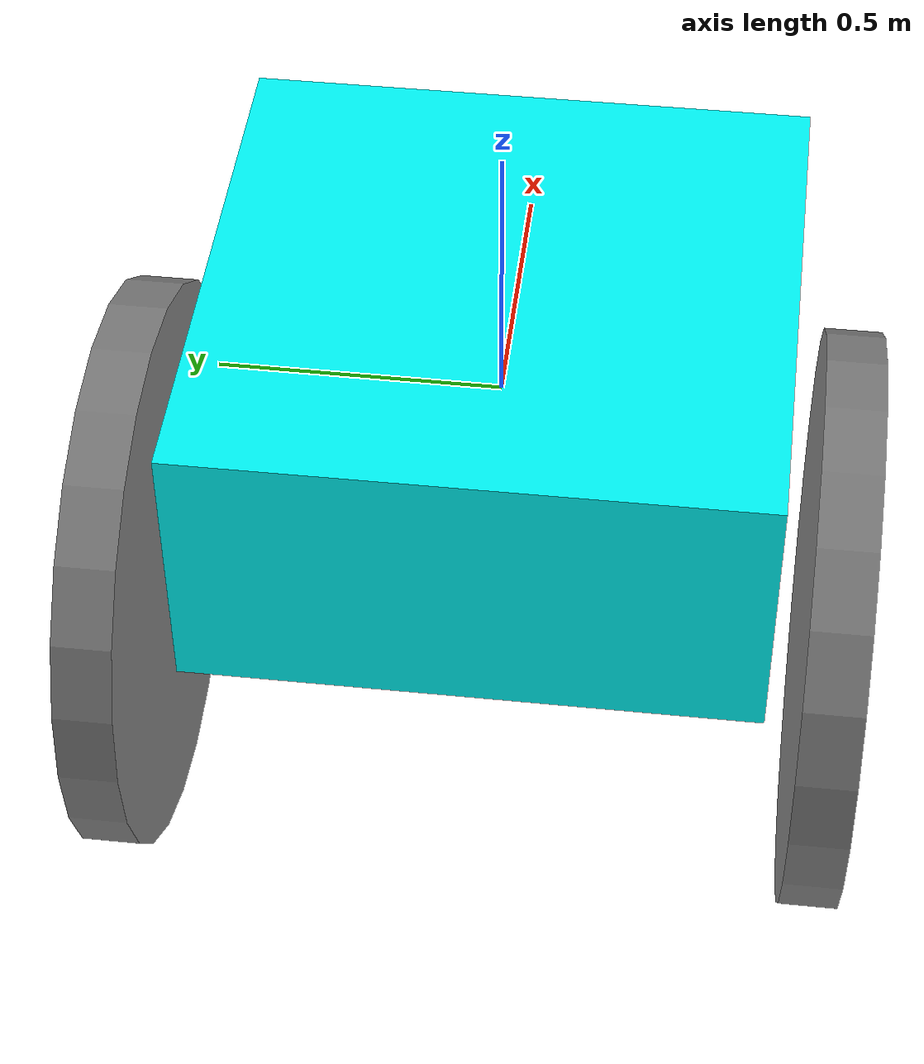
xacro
<?xml version="1.0"?>
<robot name="travis_bot" xmlns:xacro="http://ros.org/wiki/xacro">

    <xacro:property name="base_width" value="1"/>
    <xacro:property name="base_length" value="1"/>
    <xacro:property name="base_height" value="0.5"/>

    <xacro:property name="wheel_radius" value="0.5"/>
    <xacro:property name="wheel_width" value="0.1"/>

    <xacro:property name="wheel_xoff" value="0.25"/>
    <xacro:property name="wheel_ygap" value="0.1"/>
    <xacro:property name="wheel_zoff" value="0.25"/>

    <link name="base_link">
        <visual>
        <geometry>
            <box size="${base_length} ${base_width} ${base_height}"/>
        </geometry>
        <material name="Cyan">
            <color rgba="0 1.0 1.0 1.0"/>
        </material>
        </visual>
    </link>

    <link name="base_footprint"/>

    <joint name="base_joint">
        <parent link="base_footprint"/>
        <child link="base_link"/>
        <origin xyz="0.0 0.0 0.0" rpy="0 0 0"/>
    </joint>

    <xacro:macro name="wheel" params="prefix x_reflect y_reflect">
    <link name="${prefix}_link">
      <visual>
        <origin xyz="0 0 0" rpy="${pi/2} 0 0"/>
        <geometry>
            <cylinder radius="${wheel_radius}" length="${wheel_width}"/>
        </geometry>
        <material name="Gray">
          <color rgba="0.5 0.5 0.5 1.0"/>
        </material>
      </visual>
    </link>

    <joint name="${prefix}_joint" type="continuous">
      <parent link="base_link"/>
      <child link="${prefix}_link"/>
      <origin xyz="${x_reflect*wheel_xoff} ${y_reflect*(base_width/2+wheel_ygap)} ${-wheel_zoff}" rpy="0 0 0"/>
      <axis xyz="0 1 0"/>
    </joint>
  </xacro:macro>

  <xacro:wheel prefix="drivewhl_l" x_reflect="-1" y_reflect="1" />
  <xacro:wheel prefix="drivewhl_r" x_reflect="-1" y_reflect="-1" />

</robot>
